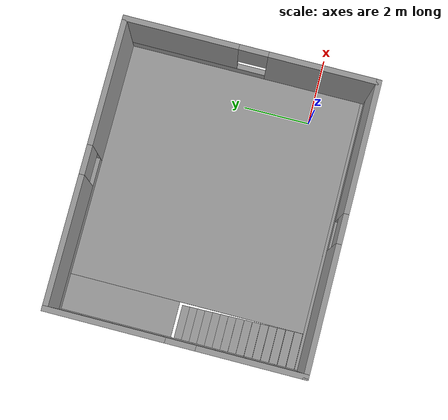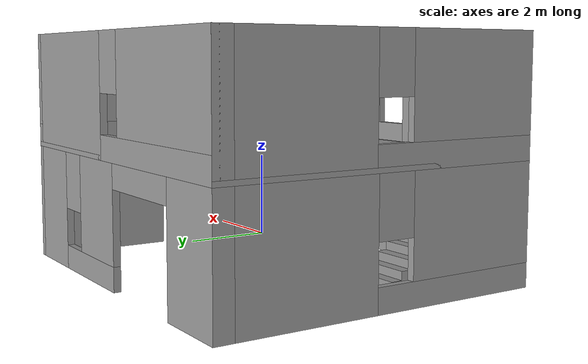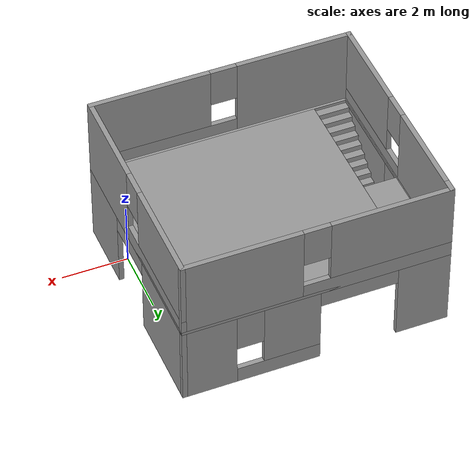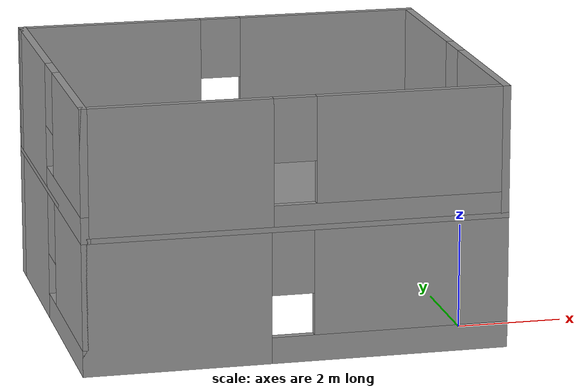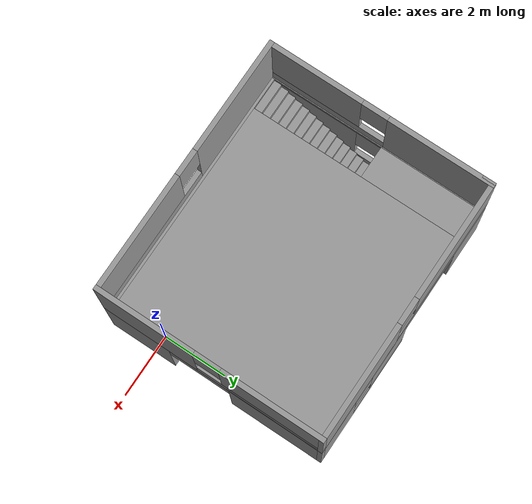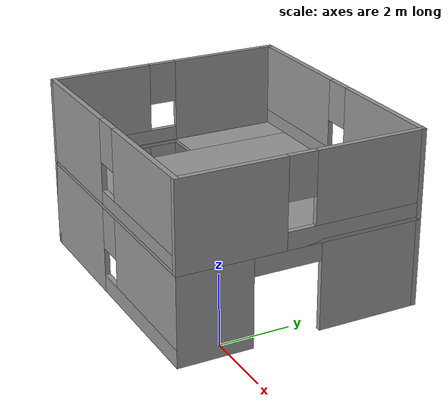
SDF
<?xml version='1.0'?>
<sdf version='1.6'>
  <model name='house4'>
    <pose frame=''>-3.47516 2.08009 0 0 -0 0</pose>
    <link name='Floor_0'>
      <pose frame=''>-0 0 2.5 0 -0 0</pose>
      <visual name='Floor_0_Visual_0'>
        <pose frame=''>-3.91063 0 0.05 0 -0 0</pose>
        <geometry>
          <box>
            <size>0.178749 7 0.1</size>
          </box>
        </geometry>
        <material>
          <script>
            <uri>file://media/materials/scripts/gazebo.material</uri>
            <name>Gazebo/Grey</name>
          </script>
          <ambient>1 1 1 1</ambient>
        </material>
        <meta>
          <layer>1</layer>
        </meta>
      </visual>
      <collision name='Floor_0_Collision_0'>
        <geometry>
          <box>
            <size>0.178749 7 0.1</size>
          </box>
        </geometry>
        <pose frame=''>-3.91063 0 0.05 0 -0 0</pose>
      </collision>
      <visual name='Floor_0_Visual_1'>
        <pose frame=''>0.089374 -3.38469 0.05 0 -0 0</pose>
        <geometry>
          <box>
            <size>7.82125 0.230626 0.1</size>
          </box>
        </geometry>
        <material>
          <script>
            <uri>file://media/materials/scripts/gazebo.material</uri>
            <name>Gazebo/Grey</name>
          </script>
          <ambient>1 1 1 1</ambient>
        </material>
        <meta>
          <layer>1</layer>
        </meta>
      </visual>
      <collision name='Floor_0_Collision_1'>
        <geometry>
          <box>
            <size>7.82125 0.230626 0.1</size>
          </box>
        </geometry>
        <pose frame=''>0.089374 -3.38469 0.05 0 -0 0</pose>
      </collision>
      <visual name='Floor_0_Visual_2'>
        <pose frame=''>0.589374 0.115313 0.05 0 -0 0</pose>
        <geometry>
          <box>
            <size>6.82125 6.76937 0.1</size>
          </box>
        </geometry>
        <material>
          <script>
            <uri>file://media/materials/scripts/gazebo.material</uri>
            <name>Gazebo/Grey</name>
          </script>
          <ambient>1 1 1 1</ambient>
        </material>
        <meta>
          <layer>1</layer>
        </meta>
      </visual>
      <collision name='Floor_0_Collision_2'>
        <geometry>
          <box>
            <size>6.82125 6.76937 0.1</size>
          </box>
        </geometry>
        <pose frame=''>0.589374 0.115313 0.05 0 -0 0</pose>
      </collision>
      <visual name='Floor_0_Visual_3'>
        <pose frame=''>-3.32125 1.86531 0.05 0 -0 0</pose>
        <geometry>
          <box>
            <size>1 3.26937 0.1</size>
          </box>
        </geometry>
        <material>
          <script>
            <uri>file://media/materials/scripts/gazebo.material</uri>
            <name>Gazebo/Grey</name>
          </script>
          <ambient>1 1 1 1</ambient>
        </material>
        <meta>
          <layer>1</layer>
        </meta>
      </visual>
      <collision name='Floor_0_Collision_3'>
        <geometry>
          <box>
            <size>1 3.26937 0.1</size>
          </box>
        </geometry>
        <pose frame=''>-3.32125 1.86531 0.05 0 -0 0</pose>
      </collision>
    </link>
    <link name='Stairs_0'>
      <visual name='Stairs_0_Visual_0'>
        <pose frame=''>-3.32125 0.11396 0.083333 0 -0 0</pose>
        <geometry>
          <box>
            <size>1 0.233333 0.166667</size>
          </box>
        </geometry>
        <material>
          <script>
            <uri>file://media/materials/scripts/gazebo.material</uri>
            <name>Gazebo/Grey</name>
          </script>
          <ambient>1 1 1 1</ambient>
        </material>
        <meta>
          <layer>0</layer>
        </meta>
      </visual>
      <collision name='Stairs_0_Collision_0'>
        <geometry>
          <box>
            <size>1 0.233333 0.166667</size>
          </box>
        </geometry>
        <pose frame=''>-3.32125 0.11396 0.083333 0 -0 0</pose>
      </collision>
      <visual name='Stairs_0_Visual_1'>
        <pose frame=''>-3.32125 -0.119374 0.25 0 -0 0</pose>
        <geometry>
          <box>
            <size>1 0.233333 0.166667</size>
          </box>
        </geometry>
        <material>
          <script>
            <uri>file://media/materials/scripts/gazebo.material</uri>
            <name>Gazebo/Grey</name>
          </script>
          <ambient>1 1 1 1</ambient>
        </material>
        <meta>
          <layer>0</layer>
        </meta>
      </visual>
      <collision name='Stairs_0_Collision_1'>
        <geometry>
          <box>
            <size>1 0.233333 0.166667</size>
          </box>
        </geometry>
        <pose frame=''>-3.32125 -0.119374 0.25 0 -0 0</pose>
      </collision>
      <visual name='Stairs_0_Visual_2'>
        <pose frame=''>-3.32125 -0.352707 0.416667 0 -0 0</pose>
        <geometry>
          <box>
            <size>1 0.233333 0.166667</size>
          </box>
        </geometry>
        <material>
          <script>
            <uri>file://media/materials/scripts/gazebo.material</uri>
            <name>Gazebo/Grey</name>
          </script>
          <ambient>1 1 1 1</ambient>
        </material>
        <meta>
          <layer>0</layer>
        </meta>
      </visual>
      <collision name='Stairs_0_Collision_2'>
        <geometry>
          <box>
            <size>1 0.233333 0.166667</size>
          </box>
        </geometry>
        <pose frame=''>-3.32125 -0.352707 0.416667 0 -0 0</pose>
      </collision>
      <visual name='Stairs_0_Visual_3'>
        <pose frame=''>-3.32125 -0.58604 0.583333 0 -0 0</pose>
        <geometry>
          <box>
            <size>1 0.233333 0.166667</size>
          </box>
        </geometry>
        <material>
          <script>
            <uri>file://media/materials/scripts/gazebo.material</uri>
            <name>Gazebo/Grey</name>
          </script>
          <ambient>1 1 1 1</ambient>
        </material>
        <meta>
          <layer>0</layer>
        </meta>
      </visual>
      <collision name='Stairs_0_Collision_3'>
        <geometry>
          <box>
            <size>1 0.233333 0.166667</size>
          </box>
        </geometry>
        <pose frame=''>-3.32125 -0.58604 0.583333 0 -0 0</pose>
      </collision>
      <visual name='Stairs_0_Visual_4'>
        <pose frame=''>-3.32125 -0.819374 0.75 0 -0 0</pose>
        <geometry>
          <box>
            <size>1 0.233333 0.166667</size>
          </box>
        </geometry>
        <material>
          <script>
            <uri>file://media/materials/scripts/gazebo.material</uri>
            <name>Gazebo/Grey</name>
          </script>
          <ambient>1 1 1 1</ambient>
        </material>
        <meta>
          <layer>0</layer>
        </meta>
      </visual>
      <collision name='Stairs_0_Collision_4'>
        <geometry>
          <box>
            <size>1 0.233333 0.166667</size>
          </box>
        </geometry>
        <pose frame=''>-3.32125 -0.819374 0.75 0 -0 0</pose>
      </collision>
      <visual name='Stairs_0_Visual_5'>
        <pose frame=''>-3.32125 -1.05271 0.916667 0 -0 0</pose>
        <geometry>
          <box>
            <size>1 0.233333 0.166667</size>
          </box>
        </geometry>
        <material>
          <script>
            <uri>file://media/materials/scripts/gazebo.material</uri>
            <name>Gazebo/Grey</name>
          </script>
          <ambient>1 1 1 1</ambient>
        </material>
        <meta>
          <layer>0</layer>
        </meta>
      </visual>
      <collision name='Stairs_0_Collision_5'>
        <geometry>
          <box>
            <size>1 0.233333 0.166667</size>
          </box>
        </geometry>
        <pose frame=''>-3.32125 -1.05271 0.916667 0 -0 0</pose>
      </collision>
      <visual name='Stairs_0_Visual_6'>
        <pose frame=''>-3.32125 -1.28604 1.08333 0 -0 0</pose>
        <geometry>
          <box>
            <size>1 0.233333 0.166667</size>
          </box>
        </geometry>
        <material>
          <script>
            <uri>file://media/materials/scripts/gazebo.material</uri>
            <name>Gazebo/Grey</name>
          </script>
          <ambient>1 1 1 1</ambient>
        </material>
        <meta>
          <layer>0</layer>
        </meta>
      </visual>
      <collision name='Stairs_0_Collision_6'>
        <geometry>
          <box>
            <size>1 0.233333 0.166667</size>
          </box>
        </geometry>
        <pose frame=''>-3.32125 -1.28604 1.08333 0 -0 0</pose>
      </collision>
      <visual name='Stairs_0_Visual_7'>
        <pose frame=''>-3.32125 -1.51937 1.25 0 -0 0</pose>
        <geometry>
          <box>
            <size>1 0.233333 0.166667</size>
          </box>
        </geometry>
        <material>
          <script>
            <uri>file://media/materials/scripts/gazebo.material</uri>
            <name>Gazebo/Grey</name>
          </script>
          <ambient>1 1 1 1</ambient>
        </material>
        <meta>
          <layer>0</layer>
        </meta>
      </visual>
      <collision name='Stairs_0_Collision_7'>
        <geometry>
          <box>
            <size>1 0.233333 0.166667</size>
          </box>
        </geometry>
        <pose frame=''>-3.32125 -1.51937 1.25 0 -0 0</pose>
      </collision>
      <visual name='Stairs_0_Visual_8'>
        <pose frame=''>-3.32125 -1.75271 1.41667 0 -0 0</pose>
        <geometry>
          <box>
            <size>1 0.233333 0.166667</size>
          </box>
        </geometry>
        <material>
          <script>
            <uri>file://media/materials/scripts/gazebo.material</uri>
            <name>Gazebo/Grey</name>
          </script>
          <ambient>1 1 1 1</ambient>
        </material>
        <meta>
          <layer>0</layer>
        </meta>
      </visual>
      <collision name='Stairs_0_Collision_8'>
        <geometry>
          <box>
            <size>1 0.233333 0.166667</size>
          </box>
        </geometry>
        <pose frame=''>-3.32125 -1.75271 1.41667 0 -0 0</pose>
      </collision>
      <visual name='Stairs_0_Visual_9'>
        <pose frame=''>-3.32125 -1.98604 1.58333 0 -0 0</pose>
        <geometry>
          <box>
            <size>1 0.233333 0.166667</size>
          </box>
        </geometry>
        <material>
          <script>
            <uri>file://media/materials/scripts/gazebo.material</uri>
            <name>Gazebo/Grey</name>
          </script>
          <ambient>1 1 1 1</ambient>
        </material>
        <meta>
          <layer>0</layer>
        </meta>
      </visual>
      <collision name='Stairs_0_Collision_9'>
        <geometry>
          <box>
            <size>1 0.233333 0.166667</size>
          </box>
        </geometry>
        <pose frame=''>-3.32125 -1.98604 1.58333 0 -0 0</pose>
      </collision>
      <visual name='Stairs_0_Visual_10'>
        <pose frame=''>-3.32125 -2.21937 1.75 0 -0 0</pose>
        <geometry>
          <box>
            <size>1 0.233333 0.166667</size>
          </box>
        </geometry>
        <material>
          <script>
            <uri>file://media/materials/scripts/gazebo.material</uri>
            <name>Gazebo/Grey</name>
          </script>
          <ambient>1 1 1 1</ambient>
        </material>
        <meta>
          <layer>0</layer>
        </meta>
      </visual>
      <collision name='Stairs_0_Collision_10'>
        <geometry>
          <box>
            <size>1 0.233333 0.166667</size>
          </box>
        </geometry>
        <pose frame=''>-3.32125 -2.21937 1.75 0 -0 0</pose>
      </collision>
      <visual name='Stairs_0_Visual_11'>
        <pose frame=''>-3.32125 -2.45271 1.91667 0 -0 0</pose>
        <geometry>
          <box>
            <size>1 0.233333 0.166667</size>
          </box>
        </geometry>
        <material>
          <script>
            <uri>file://media/materials/scripts/gazebo.material</uri>
            <name>Gazebo/Grey</name>
          </script>
          <ambient>1 1 1 1</ambient>
        </material>
        <meta>
          <layer>0</layer>
        </meta>
      </visual>
      <collision name='Stairs_0_Collision_11'>
        <geometry>
          <box>
            <size>1 0.233333 0.166667</size>
          </box>
        </geometry>
        <pose frame=''>-3.32125 -2.45271 1.91667 0 -0 0</pose>
      </collision>
      <visual name='Stairs_0_Visual_12'>
        <pose frame=''>-3.32125 -2.68604 2.08333 0 -0 0</pose>
        <geometry>
          <box>
            <size>1 0.233333 0.166667</size>
          </box>
        </geometry>
        <material>
          <script>
            <uri>file://media/materials/scripts/gazebo.material</uri>
            <name>Gazebo/Grey</name>
          </script>
          <ambient>1 1 1 1</ambient>
        </material>
        <meta>
          <layer>0</layer>
        </meta>
      </visual>
      <collision name='Stairs_0_Collision_12'>
        <geometry>
          <box>
            <size>1 0.233333 0.166667</size>
          </box>
        </geometry>
        <pose frame=''>-3.32125 -2.68604 2.08333 0 -0 0</pose>
      </collision>
      <visual name='Stairs_0_Visual_13'>
        <pose frame=''>-3.32125 -2.91937 2.25 0 -0 0</pose>
        <geometry>
          <box>
            <size>1 0.233333 0.166667</size>
          </box>
        </geometry>
        <material>
          <script>
            <uri>file://media/materials/scripts/gazebo.material</uri>
            <name>Gazebo/Grey</name>
          </script>
          <ambient>1 1 1 1</ambient>
        </material>
        <meta>
          <layer>0</layer>
        </meta>
      </visual>
      <collision name='Stairs_0_Collision_13'>
        <geometry>
          <box>
            <size>1 0.233333 0.166667</size>
          </box>
        </geometry>
        <pose frame=''>-3.32125 -2.91937 2.25 0 -0 0</pose>
      </collision>
      <visual name='Stairs_0_Visual_14'>
        <pose frame=''>-3.32125 -3.15271 2.41667 0 -0 0</pose>
        <geometry>
          <box>
            <size>1 0.233333 0.166667</size>
          </box>
        </geometry>
        <material>
          <script>
            <uri>file://media/materials/scripts/gazebo.material</uri>
            <name>Gazebo/Grey</name>
          </script>
          <ambient>1 1 1 1</ambient>
        </material>
        <meta>
          <layer>0</layer>
        </meta>
      </visual>
      <collision name='Stairs_0_Collision_14'>
        <geometry>
          <box>
            <size>1 0.233333 0.166667</size>
          </box>
        </geometry>
        <pose frame=''>-3.32125 -3.15271 2.41667 0 -0 0</pose>
      </collision>
    </link>
    <link name='Wall_10'>
      <pose frame=''>-0 3.425 2.5 0 -0 3.14159</pose>
      <visual name='Wall_10_Visual_0'>
        <pose frame=''>-2.21828 0 1.25 0 -0 0</pose>
        <geometry>
          <box>
            <size>3.56344 0.15 2.5</size>
          </box>
        </geometry>
        <material>
          <script>
            <uri>file://media/materials/scripts/gazebo.material</uri>
            <name>Gazebo/Grey</name>
          </script>
          <ambient>1 1 1 1</ambient>
        </material>
        <meta>
          <layer>1</layer>
        </meta>
      </visual>
      <collision name='Wall_10_Collision_0'>
        <geometry>
          <box>
            <size>3.56344 0.15 2.5</size>
          </box>
        </geometry>
        <pose frame=''>-2.21828 0 1.25 0 -0 0</pose>
      </collision>
      <visual name='Wall_10_Visual_1'>
        <pose frame=''>1.78172 0 0.25 0 -0 0</pose>
        <geometry>
          <box>
            <size>4.43656 0.15 0.5</size>
          </box>
        </geometry>
        <material>
          <script>
            <uri>file://media/materials/scripts/gazebo.material</uri>
            <name>Gazebo/Grey</name>
          </script>
          <ambient>1 1 1 1</ambient>
        </material>
        <meta>
          <layer>1</layer>
        </meta>
      </visual>
      <collision name='Wall_10_Collision_1'>
        <geometry>
          <box>
            <size>4.43656 0.15 0.5</size>
          </box>
        </geometry>
        <pose frame=''>1.78172 0 0.25 0 -0 0</pose>
      </collision>
      <visual name='Wall_10_Visual_2'>
        <pose frame=''>2.18172 0 1.5 0 -0 0</pose>
        <geometry>
          <box>
            <size>3.63656 0.15 2</size>
          </box>
        </geometry>
        <material>
          <script>
            <uri>file://media/materials/scripts/gazebo.material</uri>
            <name>Gazebo/Grey</name>
          </script>
          <ambient>1 1 1 1</ambient>
        </material>
        <meta>
          <layer>1</layer>
        </meta>
      </visual>
      <collision name='Wall_10_Collision_2'>
        <geometry>
          <box>
            <size>3.63656 0.15 2</size>
          </box>
        </geometry>
        <pose frame=''>2.18172 0 1.5 0 -0 0</pose>
      </collision>
      <visual name='Wall_10_Visual_3'>
        <pose frame=''>-0.036562 0 1.9 0 -0 0</pose>
        <geometry>
          <box>
            <size>0.8 0.15 1.2</size>
          </box>
        </geometry>
        <material>
          <script>
            <uri>file://media/materials/scripts/gazebo.material</uri>
            <name>Gazebo/Grey</name>
          </script>
          <ambient>1 1 1 1</ambient>
        </material>
        <meta>
          <layer>1</layer>
        </meta>
      </visual>
      <collision name='Wall_10_Collision_3'>
        <geometry>
          <box>
            <size>0.8 0.15 1.2</size>
          </box>
        </geometry>
        <pose frame=''>-0.036562 0 1.9 0 -0 0</pose>
      </collision>
    </link>
    <link name='Wall_11'>
      <collision name='Wall_11_Collision'>
        <geometry>
          <box>
            <size>0.4 0.15 2.5</size>
          </box>
        </geometry>
        <pose frame=''>0 0 1.25 0 -0 0</pose>
      </collision>
      <visual name='Wall_11_Visual'>
        <pose frame=''>0 0 1.25 0 -0 0</pose>
        <geometry>
          <box>
            <size>0.4 0.15 2.5</size>
          </box>
        </geometry>
        <material>
          <script>
            <uri>file://media/materials/scripts/gazebo.material</uri>
            <name>Gazebo/Grey</name>
          </script>
          <ambient>1 1 1 1</ambient>
        </material>
        <meta>
          <layer>1</layer>
        </meta>
      </visual>
      <pose frame=''>-3.925 3.3 2.5 0 -0 -1.5708</pose>
    </link>
    <link name='Wall_12'>
      <pose frame=''>-3.925 0 2.5 0 -0 -1.5708</pose>
      <visual name='Wall_12_Visual_0'>
        <pose frame=''>-1.87806 0 1.25 0 -0 0</pose>
        <geometry>
          <box>
            <size>3.24388 0.15 2.5</size>
          </box>
        </geometry>
        <material>
          <script>
            <uri>file://media/materials/scripts/gazebo.material</uri>
            <name>Gazebo/Grey</name>
          </script>
          <ambient>1 1 1 1</ambient>
        </material>
        <meta>
          <layer>1</layer>
        </meta>
      </visual>
      <collision name='Wall_12_Collision_0'>
        <geometry>
          <box>
            <size>3.24388 0.15 2.5</size>
          </box>
        </geometry>
        <pose frame=''>-1.87806 0 1.25 0 -0 0</pose>
      </collision>
      <visual name='Wall_12_Visual_1'>
        <pose frame=''>1.62194 0 0.25 0 -0 0</pose>
        <geometry>
          <box>
            <size>3.75612 0.15 0.5</size>
          </box>
        </geometry>
        <material>
          <script>
            <uri>file://media/materials/scripts/gazebo.material</uri>
            <name>Gazebo/Grey</name>
          </script>
          <ambient>1 1 1 1</ambient>
        </material>
        <meta>
          <layer>1</layer>
        </meta>
      </visual>
      <collision name='Wall_12_Collision_1'>
        <geometry>
          <box>
            <size>3.75612 0.15 0.5</size>
          </box>
        </geometry>
        <pose frame=''>1.62194 0 0.25 0 -0 0</pose>
      </collision>
      <visual name='Wall_12_Visual_2'>
        <pose frame=''>2.02194 0 1.5 0 -0 0</pose>
        <geometry>
          <box>
            <size>2.95612 0.15 2</size>
          </box>
        </geometry>
        <material>
          <script>
            <uri>file://media/materials/scripts/gazebo.material</uri>
            <name>Gazebo/Grey</name>
          </script>
          <ambient>1 1 1 1</ambient>
        </material>
        <meta>
          <layer>1</layer>
        </meta>
      </visual>
      <collision name='Wall_12_Collision_2'>
        <geometry>
          <box>
            <size>2.95612 0.15 2</size>
          </box>
        </geometry>
        <pose frame=''>2.02194 0 1.5 0 -0 0</pose>
      </collision>
      <visual name='Wall_12_Visual_3'>
        <pose frame=''>0.143884 0 1.9 0 -0 0</pose>
        <geometry>
          <box>
            <size>0.8 0.15 1.2</size>
          </box>
        </geometry>
        <material>
          <script>
            <uri>file://media/materials/scripts/gazebo.material</uri>
            <name>Gazebo/Grey</name>
          </script>
          <ambient>1 1 1 1</ambient>
        </material>
        <meta>
          <layer>1</layer>
        </meta>
      </visual>
      <collision name='Wall_12_Collision_3'>
        <geometry>
          <box>
            <size>0.8 0.15 1.2</size>
          </box>
        </geometry>
        <pose frame=''>0.143884 0 1.9 0 -0 0</pose>
      </collision>
    </link>
    <link name='Wall_13'>
      <pose frame=''>-0 -3.425 2.5 0 -0 0</pose>
      <visual name='Wall_13_Visual_0'>
        <pose frame=''>-2.22218 0 1.25 0 -0 0</pose>
        <geometry>
          <box>
            <size>3.55565 0.15 2.5</size>
          </box>
        </geometry>
        <material>
          <script>
            <uri>file://media/materials/scripts/gazebo.material</uri>
            <name>Gazebo/Grey</name>
          </script>
          <ambient>1 1 1 1</ambient>
        </material>
        <meta>
          <layer>1</layer>
        </meta>
      </visual>
      <collision name='Wall_13_Collision_0'>
        <geometry>
          <box>
            <size>3.55565 0.15 2.5</size>
          </box>
        </geometry>
        <pose frame=''>-2.22218 0 1.25 0 -0 0</pose>
      </collision>
      <visual name='Wall_13_Visual_1'>
        <pose frame=''>1.77782 0 0.25 0 -0 0</pose>
        <geometry>
          <box>
            <size>4.44435 0.15 0.5</size>
          </box>
        </geometry>
        <material>
          <script>
            <uri>file://media/materials/scripts/gazebo.material</uri>
            <name>Gazebo/Grey</name>
          </script>
          <ambient>1 1 1 1</ambient>
        </material>
        <meta>
          <layer>1</layer>
        </meta>
      </visual>
      <collision name='Wall_13_Collision_1'>
        <geometry>
          <box>
            <size>4.44435 0.15 0.5</size>
          </box>
        </geometry>
        <pose frame=''>1.77782 0 0.25 0 -0 0</pose>
      </collision>
      <visual name='Wall_13_Visual_2'>
        <pose frame=''>2.17782 0 1.5 0 -0 0</pose>
        <geometry>
          <box>
            <size>3.64435 0.15 2</size>
          </box>
        </geometry>
        <material>
          <script>
            <uri>file://media/materials/scripts/gazebo.material</uri>
            <name>Gazebo/Grey</name>
          </script>
          <ambient>1 1 1 1</ambient>
        </material>
        <meta>
          <layer>1</layer>
        </meta>
      </visual>
      <collision name='Wall_13_Collision_2'>
        <geometry>
          <box>
            <size>3.64435 0.15 2</size>
          </box>
        </geometry>
        <pose frame=''>2.17782 0 1.5 0 -0 0</pose>
      </collision>
      <visual name='Wall_13_Visual_3'>
        <pose frame=''>-0.044349 0 1.9 0 -0 0</pose>
        <geometry>
          <box>
            <size>0.8 0.15 1.2</size>
          </box>
        </geometry>
        <material>
          <script>
            <uri>file://media/materials/scripts/gazebo.material</uri>
            <name>Gazebo/Grey</name>
          </script>
          <ambient>1 1 1 1</ambient>
        </material>
        <meta>
          <layer>1</layer>
        </meta>
      </visual>
      <collision name='Wall_13_Collision_3'>
        <geometry>
          <box>
            <size>0.8 0.15 1.2</size>
          </box>
        </geometry>
        <pose frame=''>-0.044349 0 1.9 0 -0 0</pose>
      </collision>
    </link>
    <link name='Wall_14'>
      <pose frame=''>3.925 0 2.5 0 -0 1.5708</pose>
      <visual name='Wall_14_Visual_0'>
        <pose frame=''>-1.98149 0 1.25 0 -0 0</pose>
        <geometry>
          <box>
            <size>3.03703 0.15 2.5</size>
          </box>
        </geometry>
        <material>
          <script>
            <uri>file://media/materials/scripts/gazebo.material</uri>
            <name>Gazebo/Grey</name>
          </script>
          <ambient>1 1 1 1</ambient>
        </material>
        <meta>
          <layer>1</layer>
        </meta>
      </visual>
      <collision name='Wall_14_Collision_0'>
        <geometry>
          <box>
            <size>3.03703 0.15 2.5</size>
          </box>
        </geometry>
        <pose frame=''>-1.98149 0 1.25 0 -0 0</pose>
      </collision>
      <visual name='Wall_14_Visual_1'>
        <pose frame=''>1.51851 0 0.25 0 -0 0</pose>
        <geometry>
          <box>
            <size>3.96297 0.15 0.5</size>
          </box>
        </geometry>
        <material>
          <script>
            <uri>file://media/materials/scripts/gazebo.material</uri>
            <name>Gazebo/Grey</name>
          </script>
          <ambient>1 1 1 1</ambient>
        </material>
        <meta>
          <layer>1</layer>
        </meta>
      </visual>
      <collision name='Wall_14_Collision_1'>
        <geometry>
          <box>
            <size>3.96297 0.15 0.5</size>
          </box>
        </geometry>
        <pose frame=''>1.51851 0 0.25 0 -0 0</pose>
      </collision>
      <visual name='Wall_14_Visual_2'>
        <pose frame=''>1.91851 0 1.5 0 -0 0</pose>
        <geometry>
          <box>
            <size>3.16297 0.15 2</size>
          </box>
        </geometry>
        <material>
          <script>
            <uri>file://media/materials/scripts/gazebo.material</uri>
            <name>Gazebo/Grey</name>
          </script>
          <ambient>1 1 1 1</ambient>
        </material>
        <meta>
          <layer>1</layer>
        </meta>
      </visual>
      <collision name='Wall_14_Collision_2'>
        <geometry>
          <box>
            <size>3.16297 0.15 2</size>
          </box>
        </geometry>
        <pose frame=''>1.91851 0 1.5 0 -0 0</pose>
      </collision>
      <visual name='Wall_14_Visual_3'>
        <pose frame=''>-0.062973 0 1.9 0 -0 0</pose>
        <geometry>
          <box>
            <size>0.8 0.15 1.2</size>
          </box>
        </geometry>
        <material>
          <script>
            <uri>file://media/materials/scripts/gazebo.material</uri>
            <name>Gazebo/Grey</name>
          </script>
          <ambient>1 1 1 1</ambient>
        </material>
        <meta>
          <layer>1</layer>
        </meta>
      </visual>
      <collision name='Wall_14_Collision_3'>
        <geometry>
          <box>
            <size>0.8 0.15 1.2</size>
          </box>
        </geometry>
        <pose frame=''>-0.062973 0 1.9 0 -0 0</pose>
      </collision>
    </link>
    <link name='Wall_3'>
      <pose frame=''>-0 3.425 0 0 -0 3.14159</pose>
      <visual name='Wall_3_Visual_0'>
        <pose frame=''>-3.18921 0 1.25 0 -0 0</pose>
        <geometry>
          <box>
            <size>1.62157 0.15 2.5</size>
          </box>
        </geometry>
        <material>
          <script>
            <uri>file://media/materials/scripts/gazebo.material</uri>
            <name>Gazebo/Grey</name>
          </script>
          <ambient>1 1 1 1</ambient>
        </material>
        <meta>
          <layer>0</layer>
        </meta>
      </visual>
      <collision name='Wall_3_Collision_0'>
        <geometry>
          <box>
            <size>1.62157 0.15 2.5</size>
          </box>
        </geometry>
        <pose frame=''>-3.18921 0 1.25 0 -0 0</pose>
      </collision>
      <visual name='Wall_3_Visual_1'>
        <pose frame=''>3.20799 0 1.25 0 -0 0</pose>
        <geometry>
          <box>
            <size>1.58401 0.15 2.5</size>
          </box>
        </geometry>
        <material>
          <script>
            <uri>file://media/materials/scripts/gazebo.material</uri>
            <name>Gazebo/Grey</name>
          </script>
          <ambient>1 1 1 1</ambient>
        </material>
        <meta>
          <layer>0</layer>
        </meta>
      </visual>
      <collision name='Wall_3_Collision_1'>
        <geometry>
          <box>
            <size>1.58401 0.15 2.5</size>
          </box>
        </geometry>
        <pose frame=''>3.20799 0 1.25 0 -0 0</pose>
      </collision>
      <visual name='Wall_3_Visual_2'>
        <pose frame=''>-1.13919 0 0.25 0 -0 0</pose>
        <geometry>
          <box>
            <size>2.47847 0.15 0.5</size>
          </box>
        </geometry>
        <material>
          <script>
            <uri>file://media/materials/scripts/gazebo.material</uri>
            <name>Gazebo/Grey</name>
          </script>
          <ambient>1 1 1 1</ambient>
        </material>
        <meta>
          <layer>0</layer>
        </meta>
      </visual>
      <collision name='Wall_3_Collision_2'>
        <geometry>
          <box>
            <size>2.47847 0.15 0.5</size>
          </box>
        </geometry>
        <pose frame=''>-1.13919 0 0.25 0 -0 0</pose>
      </collision>
      <visual name='Wall_3_Visual_3'>
        <pose frame=''>-0.739193 0 1.5 0 -0 0</pose>
        <geometry>
          <box>
            <size>1.67847 0.15 2</size>
          </box>
        </geometry>
        <material>
          <script>
            <uri>file://media/materials/scripts/gazebo.material</uri>
            <name>Gazebo/Grey</name>
          </script>
          <ambient>1 1 1 1</ambient>
        </material>
        <meta>
          <layer>0</layer>
        </meta>
      </visual>
      <collision name='Wall_3_Collision_3'>
        <geometry>
          <box>
            <size>1.67847 0.15 2</size>
          </box>
        </geometry>
        <pose frame=''>-0.739193 0 1.5 0 -0 0</pose>
      </collision>
      <visual name='Wall_3_Visual_4'>
        <pose frame=''>-1.97843 0 1.9 0 -0 0</pose>
        <geometry>
          <box>
            <size>0.8 0.15 1.2</size>
          </box>
        </geometry>
        <material>
          <script>
            <uri>file://media/materials/scripts/gazebo.material</uri>
            <name>Gazebo/Grey</name>
          </script>
          <ambient>1 1 1 1</ambient>
        </material>
        <meta>
          <layer>0</layer>
        </meta>
      </visual>
      <collision name='Wall_3_Collision_4'>
        <geometry>
          <box>
            <size>0.8 0.15 1.2</size>
          </box>
        </geometry>
        <pose frame=''>-1.97843 0 1.9 0 -0 0</pose>
      </collision>
      <visual name='Wall_3_Visual_5'>
        <pose frame=''>1.25802 0 2.25 0 -0 0</pose>
        <geometry>
          <box>
            <size>2.31595 0.15 0.5</size>
          </box>
        </geometry>
        <material>
          <script>
            <uri>file://media/materials/scripts/gazebo.material</uri>
            <name>Gazebo/Grey</name>
          </script>
          <ambient>1 1 1 1</ambient>
        </material>
        <meta>
          <layer>0</layer>
        </meta>
      </visual>
      <collision name='Wall_3_Collision_5'>
        <geometry>
          <box>
            <size>2.31595 0.15 0.5</size>
          </box>
        </geometry>
        <pose frame=''>1.25802 0 2.25 0 -0 0</pose>
      </collision>
    </link>
    <link name='Wall_4'>
      <collision name='Wall_4_Collision'>
        <geometry>
          <box>
            <size>0.4 0.15 2.5</size>
          </box>
        </geometry>
        <pose frame=''>0 0 1.25 0 -0 0</pose>
      </collision>
      <visual name='Wall_4_Visual'>
        <pose frame=''>0 0 1.25 0 -0 0</pose>
        <geometry>
          <box>
            <size>0.4 0.15 2.5</size>
          </box>
        </geometry>
        <material>
          <script>
            <uri>file://media/materials/scripts/gazebo.material</uri>
            <name>Gazebo/Grey</name>
          </script>
          <ambient>1 1 1 1</ambient>
        </material>
        <meta>
          <layer>0</layer>
        </meta>
      </visual>
      <pose frame=''>-3.925 3.3 0 0 -0 -1.5708</pose>
    </link>
    <link name='Wall_6'>
      <pose frame=''>-3.925 0 0 0 -0 -1.5708</pose>
      <visual name='Wall_6_Visual_0'>
        <pose frame=''>-1.85783 0 1.25 0 -0 0</pose>
        <geometry>
          <box>
            <size>3.28434 0.15 2.5</size>
          </box>
        </geometry>
        <material>
          <script>
            <uri>file://media/materials/scripts/gazebo.material</uri>
            <name>Gazebo/Grey</name>
          </script>
          <ambient>1 1 1 1</ambient>
        </material>
        <meta>
          <layer>0</layer>
        </meta>
      </visual>
      <collision name='Wall_6_Collision_0'>
        <geometry>
          <box>
            <size>3.28434 0.15 2.5</size>
          </box>
        </geometry>
        <pose frame=''>-1.85783 0 1.25 0 -0 0</pose>
      </collision>
      <visual name='Wall_6_Visual_1'>
        <pose frame=''>1.64217 0 0.25 0 -0 0</pose>
        <geometry>
          <box>
            <size>3.71566 0.15 0.5</size>
          </box>
        </geometry>
        <material>
          <script>
            <uri>file://media/materials/scripts/gazebo.material</uri>
            <name>Gazebo/Grey</name>
          </script>
          <ambient>1 1 1 1</ambient>
        </material>
        <meta>
          <layer>0</layer>
        </meta>
      </visual>
      <collision name='Wall_6_Collision_1'>
        <geometry>
          <box>
            <size>3.71566 0.15 0.5</size>
          </box>
        </geometry>
        <pose frame=''>1.64217 0 0.25 0 -0 0</pose>
      </collision>
      <visual name='Wall_6_Visual_2'>
        <pose frame=''>2.04217 0 1.5 0 -0 0</pose>
        <geometry>
          <box>
            <size>2.91566 0.15 2</size>
          </box>
        </geometry>
        <material>
          <script>
            <uri>file://media/materials/scripts/gazebo.material</uri>
            <name>Gazebo/Grey</name>
          </script>
          <ambient>1 1 1 1</ambient>
        </material>
        <meta>
          <layer>0</layer>
        </meta>
      </visual>
      <collision name='Wall_6_Collision_2'>
        <geometry>
          <box>
            <size>2.91566 0.15 2</size>
          </box>
        </geometry>
        <pose frame=''>2.04217 0 1.5 0 -0 0</pose>
      </collision>
      <visual name='Wall_6_Visual_3'>
        <pose frame=''>0.18434 0 1.9 0 -0 0</pose>
        <geometry>
          <box>
            <size>0.8 0.15 1.2</size>
          </box>
        </geometry>
        <material>
          <script>
            <uri>file://media/materials/scripts/gazebo.material</uri>
            <name>Gazebo/Grey</name>
          </script>
          <ambient>1 1 1 1</ambient>
        </material>
        <meta>
          <layer>0</layer>
        </meta>
      </visual>
      <collision name='Wall_6_Collision_3'>
        <geometry>
          <box>
            <size>0.8 0.15 1.2</size>
          </box>
        </geometry>
        <pose frame=''>0.18434 0 1.9 0 -0 0</pose>
      </collision>
    </link>
    <link name='Wall_7'>
      <pose frame=''>-0 -3.425 0 0 -0 0</pose>
      <visual name='Wall_7_Visual_0'>
        <pose frame=''>-2.2424 0 1.25 0 -0 0</pose>
        <geometry>
          <box>
            <size>3.51519 0.15 2.5</size>
          </box>
        </geometry>
        <material>
          <script>
            <uri>file://media/materials/scripts/gazebo.material</uri>
            <name>Gazebo/Grey</name>
          </script>
          <ambient>1 1 1 1</ambient>
        </material>
        <meta>
          <layer>0</layer>
        </meta>
      </visual>
      <collision name='Wall_7_Collision_0'>
        <geometry>
          <box>
            <size>3.51519 0.15 2.5</size>
          </box>
        </geometry>
        <pose frame=''>-2.2424 0 1.25 0 -0 0</pose>
      </collision>
      <visual name='Wall_7_Visual_1'>
        <pose frame=''>1.7576 0 0.25 0 -0 0</pose>
        <geometry>
          <box>
            <size>4.4848 0.15 0.5</size>
          </box>
        </geometry>
        <material>
          <script>
            <uri>file://media/materials/scripts/gazebo.material</uri>
            <name>Gazebo/Grey</name>
          </script>
          <ambient>1 1 1 1</ambient>
        </material>
        <meta>
          <layer>0</layer>
        </meta>
      </visual>
      <collision name='Wall_7_Collision_1'>
        <geometry>
          <box>
            <size>4.4848 0.15 0.5</size>
          </box>
        </geometry>
        <pose frame=''>1.7576 0 0.25 0 -0 0</pose>
      </collision>
      <visual name='Wall_7_Visual_2'>
        <pose frame=''>2.1576 0 1.5 0 -0 0</pose>
        <geometry>
          <box>
            <size>3.6848 0.15 2</size>
          </box>
        </geometry>
        <material>
          <script>
            <uri>file://media/materials/scripts/gazebo.material</uri>
            <name>Gazebo/Grey</name>
          </script>
          <ambient>1 1 1 1</ambient>
        </material>
        <meta>
          <layer>0</layer>
        </meta>
      </visual>
      <collision name='Wall_7_Collision_2'>
        <geometry>
          <box>
            <size>3.6848 0.15 2</size>
          </box>
        </geometry>
        <pose frame=''>2.1576 0 1.5 0 -0 0</pose>
      </collision>
      <visual name='Wall_7_Visual_3'>
        <pose frame=''>-0.084805 0 1.9 0 -0 0</pose>
        <geometry>
          <box>
            <size>0.8 0.15 1.2</size>
          </box>
        </geometry>
        <material>
          <script>
            <uri>file://media/materials/scripts/gazebo.material</uri>
            <name>Gazebo/Grey</name>
          </script>
          <ambient>1 1 1 1</ambient>
        </material>
        <meta>
          <layer>0</layer>
        </meta>
      </visual>
      <collision name='Wall_7_Collision_3'>
        <geometry>
          <box>
            <size>0.8 0.15 1.2</size>
          </box>
        </geometry>
        <pose frame=''>-0.084805 0 1.9 0 -0 0</pose>
      </collision>
    </link>
    <link name='Wall_8'>
      <pose frame=''>3.925 0 0 0 -0 1.5708</pose>
      <visual name='Wall_8_Visual_0'>
        <pose frame=''>-2.44138 0 1.25 0 -0 0</pose>
        <geometry>
          <box>
            <size>2.11723 0.15 2.5</size>
          </box>
        </geometry>
        <material>
          <script>
            <uri>file://media/materials/scripts/gazebo.material</uri>
            <name>Gazebo/Grey</name>
          </script>
          <ambient>1 1 1 1</ambient>
        </material>
        <meta>
          <layer>0</layer>
        </meta>
      </visual>
      <collision name='Wall_8_Collision_0'>
        <geometry>
          <box>
            <size>2.11723 0.15 2.5</size>
          </box>
        </geometry>
        <pose frame=''>-2.44138 0 1.25 0 -0 0</pose>
      </collision>
      <visual name='Wall_8_Visual_1'>
        <pose frame=''>2.01431 0 1.25 0 -0 0</pose>
        <geometry>
          <box>
            <size>2.97138 0.15 2.5</size>
          </box>
        </geometry>
        <material>
          <script>
            <uri>file://media/materials/scripts/gazebo.material</uri>
            <name>Gazebo/Grey</name>
          </script>
          <ambient>1 1 1 1</ambient>
        </material>
        <meta>
          <layer>0</layer>
        </meta>
      </visual>
      <collision name='Wall_8_Collision_1'>
        <geometry>
          <box>
            <size>2.97138 0.15 2.5</size>
          </box>
        </geometry>
        <pose frame=''>2.01431 0 1.25 0 -0 0</pose>
      </collision>
      <visual name='Wall_8_Visual_2'>
        <pose frame=''>-0.427073 0 2.25 0 -0 0</pose>
        <geometry>
          <box>
            <size>1.91139 0.15 0.5</size>
          </box>
        </geometry>
        <material>
          <script>
            <uri>file://media/materials/scripts/gazebo.material</uri>
            <name>Gazebo/Grey</name>
          </script>
          <ambient>1 1 1 1</ambient>
        </material>
        <meta>
          <layer>0</layer>
        </meta>
      </visual>
      <collision name='Wall_8_Collision_2'>
        <geometry>
          <box>
            <size>1.91139 0.15 0.5</size>
          </box>
        </geometry>
        <pose frame=''>-0.427073 0 2.25 0 -0 0</pose>
      </collision>
    </link>
    <static>1</static>
  </model>
</sdf>
